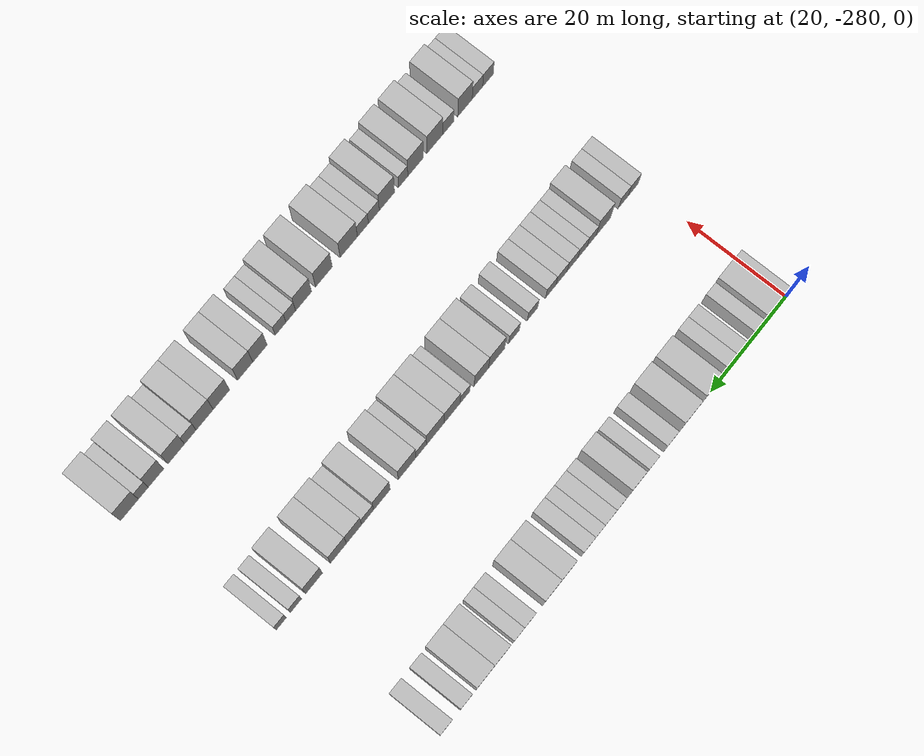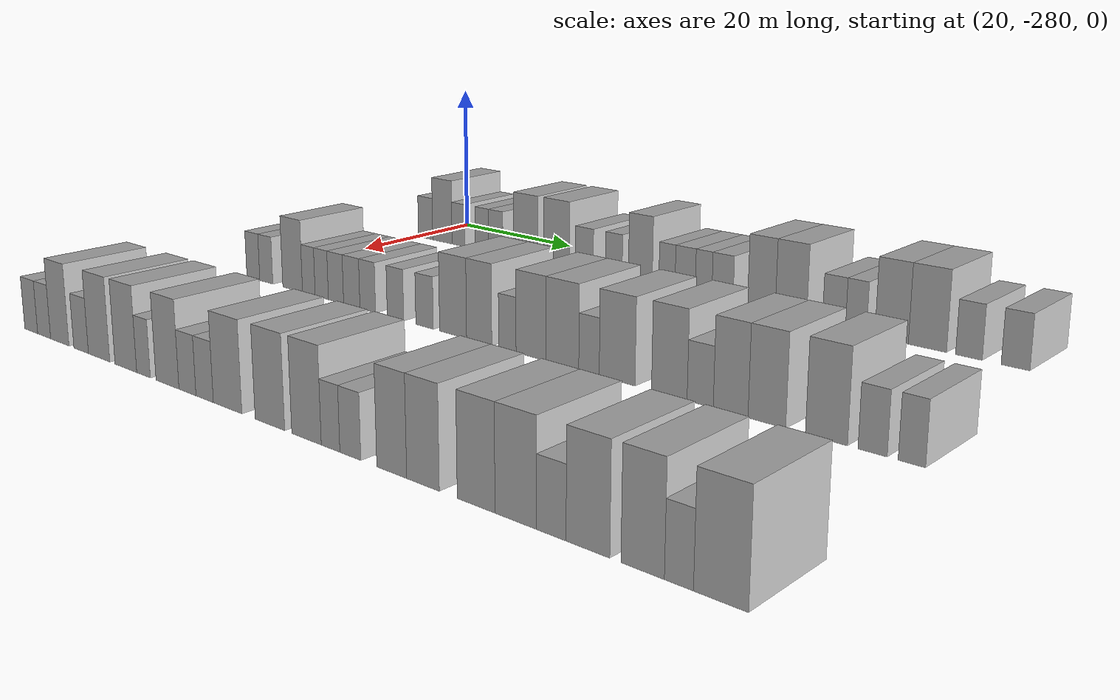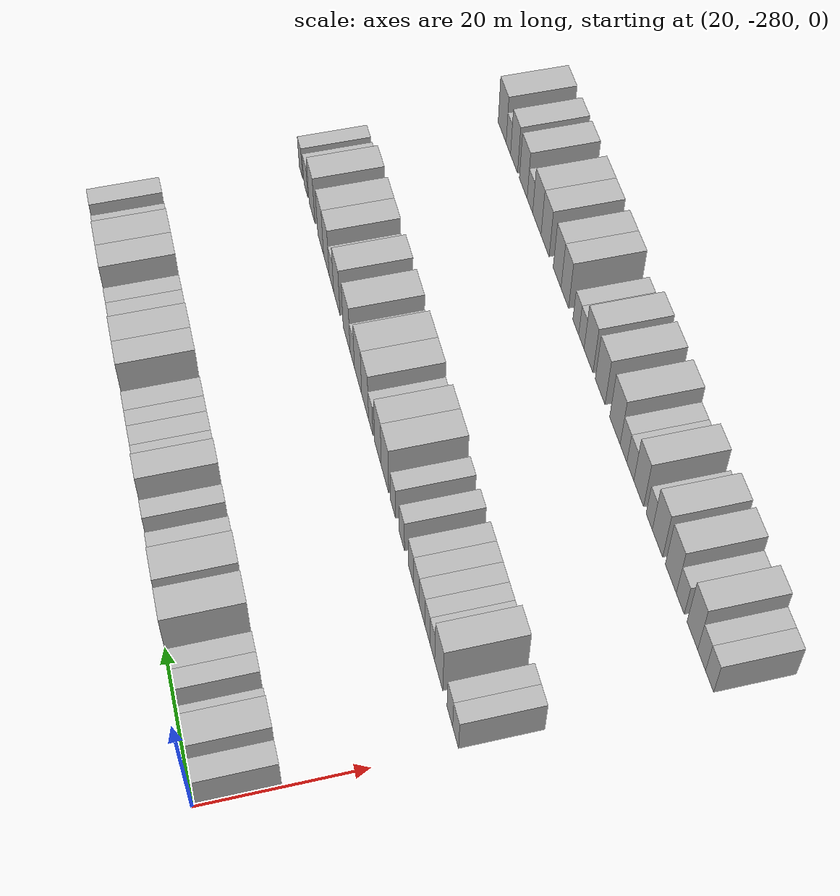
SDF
<sdf version="1.6">
 <world name="default">
  <model name="building_1">
   <static>1</static>
   <pose>25.0000 -278.5396 0 0.000000 0.000000 0.000000</pose>
   <link name="link">
    <pose>0 0 3.00 0 0 0</pose>
    <collision name="collision"><geometry><box><size>10.0000 2.9208 6.0000</size></box></geometry></collision>
    <visual name="visual">
     <cast_shadows>0</cast_shadows>
     <geometry><box><size>10.0000 2.9208 6.0000</size></box></geometry>
     <material>
      <script>
       <uri>model://HANNAS_wall/materials/scripts</uri>
       <uri>model://HANNAS_wall/materials/textures</uri>
       <name>vrc/HANNAS_wall</name>
      </script>
     </material>
    </visual>
   </link>
  </model>
  <model name="building_2">
   <static>1</static>
   <pose>25.0000 -275.1381 0 0.000000 0.000000 0.000000</pose>
   <link name="link">
    <pose>0 0 4.50 0 0 0</pose>
    <collision name="collision"><geometry><box><size>10.0000 3.8823 9.0000</size></box></geometry></collision>
    <visual name="visual">
     <cast_shadows>0</cast_shadows>
     <geometry><box><size>10.0000 3.8823 9.0000</size></box></geometry>
     <material>
      <script>
       <uri>model://HANNAS_wall/materials/scripts</uri>
       <uri>model://HANNAS_wall/materials/textures</uri>
       <name>vrc/HANNAS_wall</name>
      </script>
     </material>
    </visual>
   </link>
  </model>
  <model name="building_3">
   <static>1</static>
   <pose>25.0000 -271.9334 0 0.000000 0.000000 0.000000</pose>
   <link name="link">
    <pose>0 0 3.00 0 0 0</pose>
    <collision name="collision"><geometry><box><size>10.0000 2.5270 6.0000</size></box></geometry></collision>
    <visual name="visual">
     <cast_shadows>0</cast_shadows>
     <geometry><box><size>10.0000 2.5270 6.0000</size></box></geometry>
     <material>
      <script>
       <uri>model://HANNAS_wall/materials/scripts</uri>
       <uri>model://HANNAS_wall/materials/textures</uri>
       <name>vrc/HANNAS_wall</name>
      </script>
     </material>
    </visual>
   </link>
  </model>
  <model name="building_4">
   <static>1</static>
   <pose>25.0000 -267.3783 0 0.000000 0.000000 0.000000</pose>
   <link name="link">
    <pose>0 0 3.00 0 0 0</pose>
    <collision name="collision"><geometry><box><size>10.0000 2.5832 6.0000</size></box></geometry></collision>
    <visual name="visual">
     <cast_shadows>0</cast_shadows>
     <geometry><box><size>10.0000 2.5832 6.0000</size></box></geometry>
     <material>
      <script>
       <uri>model://HANNAS_wall/materials/scripts</uri>
       <uri>model://HANNAS_wall/materials/textures</uri>
       <name>vrc/HANNAS_wall</name>
      </script>
     </material>
    </visual>
   </link>
  </model>
  <model name="building_5">
   <static>1</static>
   <pose>25.0000 -264.7632 0 0.000000 0.000000 0.000000</pose>
   <link name="link">
    <pose>0 0 3.00 0 0 0</pose>
    <collision name="collision"><geometry><box><size>10.0000 2.6470 6.0000</size></box></geometry></collision>
    <visual name="visual">
     <cast_shadows>0</cast_shadows>
     <geometry><box><size>10.0000 2.6470 6.0000</size></box></geometry>
     <material>
      <script>
       <uri>model://HANNAS_wall/materials/scripts</uri>
       <uri>model://HANNAS_wall/materials/textures</uri>
       <name>vrc/HANNAS_wall</name>
      </script>
     </material>
    </visual>
   </link>
  </model>
  <model name="building_6">
   <static>1</static>
   <pose>25.0000 -259.2759 0 0.000000 0.000000 0.000000</pose>
   <link name="link">
    <pose>0 0 4.50 0 0 0</pose>
    <collision name="collision"><geometry><box><size>10.0000 4.3277 9.0000</size></box></geometry></collision>
    <visual name="visual">
     <cast_shadows>0</cast_shadows>
     <geometry><box><size>10.0000 4.3277 9.0000</size></box></geometry>
     <material>
      <script>
       <uri>model://HANNAS_wall/materials/scripts</uri>
       <uri>model://HANNAS_wall/materials/textures</uri>
       <name>vrc/HANNAS_wall</name>
      </script>
     </material>
    </visual>
   </link>
  </model>
  <model name="building_7">
   <static>1</static>
   <pose>25.0000 -253.8736 0 0.000000 0.000000 0.000000</pose>
   <link name="link">
    <pose>0 0 4.50 0 0 0</pose>
    <collision name="collision"><geometry><box><size>10.0000 4.4769 9.0000</size></box></geometry></collision>
    <visual name="visual">
     <cast_shadows>0</cast_shadows>
     <geometry><box><size>10.0000 4.4769 9.0000</size></box></geometry>
     <material>
      <script>
       <uri>model://HANNAS_wall/materials/scripts</uri>
       <uri>model://HANNAS_wall/materials/textures</uri>
       <name>vrc/HANNAS_wall</name>
      </script>
     </material>
    </visual>
   </link>
  </model>
  <model name="building_8">
   <static>1</static>
   <pose>25.0000 -249.1465 0 0.000000 0.000000 0.000000</pose>
   <link name="link">
    <pose>0 0 3.00 0 0 0</pose>
    <collision name="collision"><geometry><box><size>10.0000 2.9773 6.0000</size></box></geometry></collision>
    <visual name="visual">
     <cast_shadows>0</cast_shadows>
     <geometry><box><size>10.0000 2.9773 6.0000</size></box></geometry>
     <material>
      <script>
       <uri>model://HANNAS_wall/materials/scripts</uri>
       <uri>model://HANNAS_wall/materials/textures</uri>
       <name>vrc/HANNAS_wall</name>
      </script>
     </material>
    </visual>
   </link>
  </model>
  <model name="building_9">
   <static>1</static>
   <pose>25.0000 -244.3218 0 0.000000 0.000000 0.000000</pose>
   <link name="link">
    <pose>0 0 3.00 0 0 0</pose>
    <collision name="collision"><geometry><box><size>10.0000 2.6721 6.0000</size></box></geometry></collision>
    <visual name="visual">
     <cast_shadows>0</cast_shadows>
     <geometry><box><size>10.0000 2.6721 6.0000</size></box></geometry>
     <material>
      <script>
       <uri>model://HANNAS_wall/materials/scripts</uri>
       <uri>model://HANNAS_wall/materials/textures</uri>
       <name>vrc/HANNAS_wall</name>
      </script>
     </material>
    </visual>
   </link>
  </model>
  <model name="building_10">
   <static>1</static>
   <pose>25.0000 -240.1321 0 0.000000 0.000000 0.000000</pose>
   <link name="link">
    <pose>0 0 4.50 0 0 0</pose>
    <collision name="collision"><geometry><box><size>10.0000 3.7073 9.0000</size></box></geometry></collision>
    <visual name="visual">
     <cast_shadows>0</cast_shadows>
     <geometry><box><size>10.0000 3.7073 9.0000</size></box></geometry>
     <material>
      <script>
       <uri>model://HANNAS_wall/materials/scripts</uri>
       <uri>model://HANNAS_wall/materials/textures</uri>
       <name>vrc/HANNAS_wall</name>
      </script>
     </material>
    </visual>
   </link>
  </model>
  <model name="building_11">
   <static>1</static>
   <pose>25.0000 -236.0598 0 0.000000 0.000000 0.000000</pose>
   <link name="link">
    <pose>0 0 3.00 0 0 0</pose>
    <collision name="collision"><geometry><box><size>10.0000 2.4374 6.0000</size></box></geometry></collision>
    <visual name="visual">
     <cast_shadows>0</cast_shadows>
     <geometry><box><size>10.0000 2.4374 6.0000</size></box></geometry>
     <material>
      <script>
       <uri>model://HANNAS_wall/materials/scripts</uri>
       <uri>model://HANNAS_wall/materials/textures</uri>
       <name>vrc/HANNAS_wall</name>
      </script>
     </material>
    </visual>
   </link>
  </model>
  <model name="building_12">
   <static>1</static>
   <pose>25.0000 -233.3517 0 0.000000 0.000000 0.000000</pose>
   <link name="link">
    <pose>0 0 3.00 0 0 0</pose>
    <collision name="collision"><geometry><box><size>10.0000 2.9788 6.0000</size></box></geometry></collision>
    <visual name="visual">
     <cast_shadows>0</cast_shadows>
     <geometry><box><size>10.0000 2.9788 6.0000</size></box></geometry>
     <material>
      <script>
       <uri>model://HANNAS_wall/materials/scripts</uri>
       <uri>model://HANNAS_wall/materials/textures</uri>
       <name>vrc/HANNAS_wall</name>
      </script>
     </material>
    </visual>
   </link>
  </model>
  <model name="building_13">
   <static>1</static>
   <pose>25.0000 -230.6579 0 0.000000 0.000000 0.000000</pose>
   <link name="link">
    <pose>0 0 3.00 0 0 0</pose>
    <collision name="collision"><geometry><box><size>10.0000 2.4088 6.0000</size></box></geometry></collision>
    <visual name="visual">
     <cast_shadows>0</cast_shadows>
     <geometry><box><size>10.0000 2.4088 6.0000</size></box></geometry>
     <material>
      <script>
       <uri>model://HANNAS_wall/materials/scripts</uri>
       <uri>model://HANNAS_wall/materials/textures</uri>
       <name>vrc/HANNAS_wall</name>
      </script>
     </material>
    </visual>
   </link>
  </model>
  <model name="building_14">
   <static>1</static>
   <pose>25.0000 -227.9544 0 0.000000 0.000000 0.000000</pose>
   <link name="link">
    <pose>0 0 3.00 0 0 0</pose>
    <collision name="collision"><geometry><box><size>10.0000 2.9981 6.0000</size></box></geometry></collision>
    <visual name="visual">
     <cast_shadows>0</cast_shadows>
     <geometry><box><size>10.0000 2.9981 6.0000</size></box></geometry>
     <material>
      <script>
       <uri>model://HANNAS_wall/materials/scripts</uri>
       <uri>model://HANNAS_wall/materials/textures</uri>
       <name>vrc/HANNAS_wall</name>
      </script>
     </material>
    </visual>
   </link>
  </model>
  <model name="building_15">
   <static>1</static>
   <pose>25.0000 -222.5823 0 0.000000 0.000000 0.000000</pose>
   <link name="link">
    <pose>0 0 4.50 0 0 0</pose>
    <collision name="collision"><geometry><box><size>10.0000 3.7462 9.0000</size></box></geometry></collision>
    <visual name="visual">
     <cast_shadows>0</cast_shadows>
     <geometry><box><size>10.0000 3.7462 9.0000</size></box></geometry>
     <material>
      <script>
       <uri>model://HANNAS_wall/materials/scripts</uri>
       <uri>model://HANNAS_wall/materials/textures</uri>
       <name>vrc/HANNAS_wall</name>
      </script>
     </material>
    </visual>
   </link>
  </model>
  <model name="building_16">
   <static>1</static>
   <pose>25.0000 -218.6534 0 0.000000 0.000000 0.000000</pose>
   <link name="link">
    <pose>0 0 4.50 0 0 0</pose>
    <collision name="collision"><geometry><box><size>10.0000 4.1116 9.0000</size></box></geometry></collision>
    <visual name="visual">
     <cast_shadows>0</cast_shadows>
     <geometry><box><size>10.0000 4.1116 9.0000</size></box></geometry>
     <material>
      <script>
       <uri>model://HANNAS_wall/materials/scripts</uri>
       <uri>model://HANNAS_wall/materials/textures</uri>
       <name>vrc/HANNAS_wall</name>
      </script>
     </material>
    </visual>
   </link>
  </model>
  <model name="building_17">
   <static>1</static>
   <pose>25.0000 -213.1574 0 0.000000 0.000000 0.000000</pose>
   <link name="link">
    <pose>0 0 3.00 0 0 0</pose>
    <collision name="collision"><geometry><box><size>10.0000 2.8804 6.0000</size></box></geometry></collision>
    <visual name="visual">
     <cast_shadows>0</cast_shadows>
     <geometry><box><size>10.0000 2.8804 6.0000</size></box></geometry>
     <material>
      <script>
       <uri>model://HANNAS_wall/materials/scripts</uri>
       <uri>model://HANNAS_wall/materials/textures</uri>
       <name>vrc/HANNAS_wall</name>
      </script>
     </material>
    </visual>
   </link>
  </model>
  <model name="building_18">
   <static>1</static>
   <pose>25.0000 -210.4344 0 0.000000 0.000000 0.000000</pose>
   <link name="link">
    <pose>0 0 3.00 0 0 0</pose>
    <collision name="collision"><geometry><box><size>10.0000 2.5655 6.0000</size></box></geometry></collision>
    <visual name="visual">
     <cast_shadows>0</cast_shadows>
     <geometry><box><size>10.0000 2.5655 6.0000</size></box></geometry>
     <material>
      <script>
       <uri>model://HANNAS_wall/materials/scripts</uri>
       <uri>model://HANNAS_wall/materials/textures</uri>
       <name>vrc/HANNAS_wall</name>
      </script>
     </material>
    </visual>
   </link>
  </model>
  <model name="building_19">
   <static>1</static>
   <pose>25.0000 -206.1890 0 0.000000 0.000000 0.000000</pose>
   <link name="link">
    <pose>0 0 4.50 0 0 0</pose>
    <collision name="collision"><geometry><box><size>10.0000 3.9254 9.0000</size></box></geometry></collision>
    <visual name="visual">
     <cast_shadows>0</cast_shadows>
     <geometry><box><size>10.0000 3.9254 9.0000</size></box></geometry>
     <material>
      <script>
       <uri>model://HANNAS_wall/materials/scripts</uri>
       <uri>model://HANNAS_wall/materials/textures</uri>
       <name>vrc/HANNAS_wall</name>
      </script>
     </material>
    </visual>
   </link>
  </model>
  <model name="building_20">
   <static>1</static>
   <pose>25.0000 -202.0667 0 0.000000 0.000000 0.000000</pose>
   <link name="link">
    <pose>0 0 4.50 0 0 0</pose>
    <collision name="collision"><geometry><box><size>10.0000 4.3190 9.0000</size></box></geometry></collision>
    <visual name="visual">
     <cast_shadows>0</cast_shadows>
     <geometry><box><size>10.0000 4.3190 9.0000</size></box></geometry>
     <material>
      <script>
       <uri>model://HANNAS_wall/materials/scripts</uri>
       <uri>model://HANNAS_wall/materials/textures</uri>
       <name>vrc/HANNAS_wall</name>
      </script>
     </material>
    </visual>
   </link>
  </model>
  <model name="building_21">
   <static>1</static>
   <pose>25.0000 -197.4640 0 0.000000 0.000000 0.000000</pose>
   <link name="link">
    <pose>0 0 3.00 0 0 0</pose>
    <collision name="collision"><geometry><box><size>10.0000 2.8864 6.0000</size></box></geometry></collision>
    <visual name="visual">
     <cast_shadows>0</cast_shadows>
     <geometry><box><size>10.0000 2.8864 6.0000</size></box></geometry>
     <material>
      <script>
       <uri>model://HANNAS_wall/materials/scripts</uri>
       <uri>model://HANNAS_wall/materials/textures</uri>
       <name>vrc/HANNAS_wall</name>
      </script>
     </material>
    </visual>
   </link>
  </model>
  <model name="building_22">
   <static>1</static>
   <pose>25.0000 -192.5317 0 0.000000 0.000000 0.000000</pose>
   <link name="link">
    <pose>0 0 3.00 0 0 0</pose>
    <collision name="collision"><geometry><box><size>10.0000 2.9783 6.0000</size></box></geometry></collision>
    <visual name="visual">
     <cast_shadows>0</cast_shadows>
     <geometry><box><size>10.0000 2.9783 6.0000</size></box></geometry>
     <material>
      <script>
       <uri>model://HANNAS_wall/materials/scripts</uri>
       <uri>model://HANNAS_wall/materials/textures</uri>
       <name>vrc/HANNAS_wall</name>
      </script>
     </material>
    </visual>
   </link>
  </model>
  <model name="building_144">
   <static>1</static>
   <pose>55.0000 -278.6640 0 0.000000 0.000000 0.000000</pose>
   <link name="link">
    <pose>0 0 3.00 0 0 0</pose>
    <collision name="collision"><geometry><box><size>10.0000 2.6720 6.0000</size></box></geometry></collision>
    <visual name="visual">
     <cast_shadows>0</cast_shadows>
     <geometry><box><size>10.0000 2.6720 6.0000</size></box></geometry>
     <material>
      <script>
       <uri>model://HANNAS_wall/materials/scripts</uri>
       <uri>model://HANNAS_wall/materials/textures</uri>
       <name>vrc/HANNAS_wall</name>
      </script>
     </material>
    </visual>
   </link>
  </model>
  <model name="building_145">
   <static>1</static>
   <pose>55.0000 -276.0088 0 0.000000 0.000000 0.000000</pose>
   <link name="link">
    <pose>0 0 3.00 0 0 0</pose>
    <collision name="collision"><geometry><box><size>10.0000 2.6384 6.0000</size></box></geometry></collision>
    <visual name="visual">
     <cast_shadows>0</cast_shadows>
     <geometry><box><size>10.0000 2.6384 6.0000</size></box></geometry>
     <material>
      <script>
       <uri>model://HANNAS_wall/materials/scripts</uri>
       <uri>model://HANNAS_wall/materials/textures</uri>
       <name>vrc/HANNAS_wall</name>
      </script>
     </material>
    </visual>
   </link>
  </model>
  <model name="building_146">
   <static>1</static>
   <pose>55.0000 -270.7719 0 0.000000 0.000000 0.000000</pose>
   <link name="link">
    <pose>0 0 4.50 0 0 0</pose>
    <collision name="collision"><geometry><box><size>10.0000 3.8356 9.0000</size></box></geometry></collision>
    <visual name="visual">
     <cast_shadows>0</cast_shadows>
     <geometry><box><size>10.0000 3.8356 9.0000</size></box></geometry>
     <material>
      <script>
       <uri>model://HANNAS_wall/materials/scripts</uri>
       <uri>model://HANNAS_wall/materials/textures</uri>
       <name>vrc/HANNAS_wall</name>
      </script>
     </material>
    </visual>
   </link>
  </model>
  <model name="building_147">
   <static>1</static>
   <pose>55.0000 -267.6472 0 0.000000 0.000000 0.000000</pose>
   <link name="link">
    <pose>0 0 3.00 0 0 0</pose>
    <collision name="collision"><geometry><box><size>10.0000 2.4137 6.0000</size></box></geometry></collision>
    <visual name="visual">
     <cast_shadows>0</cast_shadows>
     <geometry><box><size>10.0000 2.4137 6.0000</size></box></geometry>
     <material>
      <script>
       <uri>model://HANNAS_wall/materials/scripts</uri>
       <uri>model://HANNAS_wall/materials/textures</uri>
       <name>vrc/HANNAS_wall</name>
      </script>
     </material>
    </visual>
   </link>
  </model>
  <model name="building_148">
   <static>1</static>
   <pose>55.0000 -265.2075 0 0.000000 0.000000 0.000000</pose>
   <link name="link">
    <pose>0 0 3.00 0 0 0</pose>
    <collision name="collision"><geometry><box><size>10.0000 2.4659 6.0000</size></box></geometry></collision>
    <visual name="visual">
     <cast_shadows>0</cast_shadows>
     <geometry><box><size>10.0000 2.4659 6.0000</size></box></geometry>
     <material>
      <script>
       <uri>model://HANNAS_wall/materials/scripts</uri>
       <uri>model://HANNAS_wall/materials/textures</uri>
       <name>vrc/HANNAS_wall</name>
      </script>
     </material>
    </visual>
   </link>
  </model>
  <model name="building_149">
   <static>1</static>
   <pose>55.0000 -262.5888 0 0.000000 0.000000 0.000000</pose>
   <link name="link">
    <pose>0 0 3.00 0 0 0</pose>
    <collision name="collision"><geometry><box><size>10.0000 2.7714 6.0000</size></box></geometry></collision>
    <visual name="visual">
     <cast_shadows>0</cast_shadows>
     <geometry><box><size>10.0000 2.7714 6.0000</size></box></geometry>
     <material>
      <script>
       <uri>model://HANNAS_wall/materials/scripts</uri>
       <uri>model://HANNAS_wall/materials/textures</uri>
       <name>vrc/HANNAS_wall</name>
      </script>
     </material>
    </visual>
   </link>
  </model>
  <model name="building_150">
   <static>1</static>
   <pose>55.0000 -259.7453 0 0.000000 0.000000 0.000000</pose>
   <link name="link">
    <pose>0 0 3.00 0 0 0</pose>
    <collision name="collision"><geometry><box><size>10.0000 2.9156 6.0000</size></box></geometry></collision>
    <visual name="visual">
     <cast_shadows>0</cast_shadows>
     <geometry><box><size>10.0000 2.9156 6.0000</size></box></geometry>
     <material>
      <script>
       <uri>model://HANNAS_wall/materials/scripts</uri>
       <uri>model://HANNAS_wall/materials/textures</uri>
       <name>vrc/HANNAS_wall</name>
      </script>
     </material>
    </visual>
   </link>
  </model>
  <model name="building_151">
   <static>1</static>
   <pose>55.0000 -256.9271 0 0.000000 0.000000 0.000000</pose>
   <link name="link">
    <pose>0 0 3.00 0 0 0</pose>
    <collision name="collision"><geometry><box><size>10.0000 2.7208 6.0000</size></box></geometry></collision>
    <visual name="visual">
     <cast_shadows>0</cast_shadows>
     <geometry><box><size>10.0000 2.7208 6.0000</size></box></geometry>
     <material>
      <script>
       <uri>model://HANNAS_wall/materials/scripts</uri>
       <uri>model://HANNAS_wall/materials/textures</uri>
       <name>vrc/HANNAS_wall</name>
      </script>
     </material>
    </visual>
   </link>
  </model>
  <model name="building_152">
   <static>1</static>
   <pose>55.0000 -252.1906 0 0.000000 0.000000 0.000000</pose>
   <link name="link">
    <pose>0 0 3.00 0 0 0</pose>
    <collision name="collision"><geometry><box><size>10.0000 2.7523 6.0000</size></box></geometry></collision>
    <visual name="visual">
     <cast_shadows>0</cast_shadows>
     <geometry><box><size>10.0000 2.7523 6.0000</size></box></geometry>
     <material>
      <script>
       <uri>model://HANNAS_wall/materials/scripts</uri>
       <uri>model://HANNAS_wall/materials/textures</uri>
       <name>vrc/HANNAS_wall</name>
      </script>
     </material>
    </visual>
   </link>
  </model>
  <model name="building_153">
   <static>1</static>
   <pose>55.0000 -247.4124 0 0.000000 0.000000 0.000000</pose>
   <link name="link">
    <pose>0 0 3.00 0 0 0</pose>
    <collision name="collision"><geometry><box><size>10.0000 2.8041 6.0000</size></box></geometry></collision>
    <visual name="visual">
     <cast_shadows>0</cast_shadows>
     <geometry><box><size>10.0000 2.8041 6.0000</size></box></geometry>
     <material>
      <script>
       <uri>model://HANNAS_wall/materials/scripts</uri>
       <uri>model://HANNAS_wall/materials/textures</uri>
       <name>vrc/HANNAS_wall</name>
      </script>
     </material>
    </visual>
   </link>
  </model>
  <model name="building_154">
   <static>1</static>
   <pose>55.0000 -242.9289 0 0.000000 0.000000 0.000000</pose>
   <link name="link">
    <pose>0 0 4.50 0 0 0</pose>
    <collision name="collision"><geometry><box><size>10.0000 4.1631 9.0000</size></box></geometry></collision>
    <visual name="visual">
     <cast_shadows>0</cast_shadows>
     <geometry><box><size>10.0000 4.1631 9.0000</size></box></geometry>
     <material>
      <script>
       <uri>model://HANNAS_wall/materials/scripts</uri>
       <uri>model://HANNAS_wall/materials/textures</uri>
       <name>vrc/HANNAS_wall</name>
      </script>
     </material>
    </visual>
   </link>
  </model>
  <model name="building_155">
   <static>1</static>
   <pose>55.0000 -238.9700 0 0.000000 0.000000 0.000000</pose>
   <link name="link">
    <pose>0 0 4.50 0 0 0</pose>
    <collision name="collision"><geometry><box><size>10.0000 3.7547 9.0000</size></box></geometry></collision>
    <visual name="visual">
     <cast_shadows>0</cast_shadows>
     <geometry><box><size>10.0000 3.7547 9.0000</size></box></geometry>
     <material>
      <script>
       <uri>model://HANNAS_wall/materials/scripts</uri>
       <uri>model://HANNAS_wall/materials/textures</uri>
       <name>vrc/HANNAS_wall</name>
      </script>
     </material>
    </visual>
   </link>
  </model>
  <model name="building_156">
   <static>1</static>
   <pose>55.0000 -234.8412 0 0.000000 0.000000 0.000000</pose>
   <link name="link">
    <pose>0 0 3.00 0 0 0</pose>
    <collision name="collision"><geometry><box><size>10.0000 2.5029 6.0000</size></box></geometry></collision>
    <visual name="visual">
     <cast_shadows>0</cast_shadows>
     <geometry><box><size>10.0000 2.5029 6.0000</size></box></geometry>
     <material>
      <script>
       <uri>model://HANNAS_wall/materials/scripts</uri>
       <uri>model://HANNAS_wall/materials/textures</uri>
       <name>vrc/HANNAS_wall</name>
      </script>
     </material>
    </visual>
   </link>
  </model>
  <model name="building_157">
   <static>1</static>
   <pose>55.0000 -231.5283 0 0.000000 0.000000 0.000000</pose>
   <link name="link">
    <pose>0 0 4.50 0 0 0</pose>
    <collision name="collision"><geometry><box><size>10.0000 4.1229 9.0000</size></box></geometry></collision>
    <visual name="visual">
     <cast_shadows>0</cast_shadows>
     <geometry><box><size>10.0000 4.1229 9.0000</size></box></geometry>
     <material>
      <script>
       <uri>model://HANNAS_wall/materials/scripts</uri>
       <uri>model://HANNAS_wall/materials/textures</uri>
       <name>vrc/HANNAS_wall</name>
      </script>
     </material>
    </visual>
   </link>
  </model>
  <model name="building_158">
   <static>1</static>
   <pose>55.0000 -227.2563 0 0.000000 0.000000 0.000000</pose>
   <link name="link">
    <pose>0 0 4.50 0 0 0</pose>
    <collision name="collision"><geometry><box><size>10.0000 4.4212 9.0000</size></box></geometry></collision>
    <visual name="visual">
     <cast_shadows>0</cast_shadows>
     <geometry><box><size>10.0000 4.4212 9.0000</size></box></geometry>
     <material>
      <script>
       <uri>model://HANNAS_wall/materials/scripts</uri>
       <uri>model://HANNAS_wall/materials/textures</uri>
       <name>vrc/HANNAS_wall</name>
      </script>
     </material>
    </visual>
   </link>
  </model>
  <model name="building_159">
   <static>1</static>
   <pose>55.0000 -223.7208 0 0.000000 0.000000 0.000000</pose>
   <link name="link">
    <pose>0 0 3.00 0 0 0</pose>
    <collision name="collision"><geometry><box><size>10.0000 2.6498 6.0000</size></box></geometry></collision>
    <visual name="visual">
     <cast_shadows>0</cast_shadows>
     <geometry><box><size>10.0000 2.6498 6.0000</size></box></geometry>
     <material>
      <script>
       <uri>model://HANNAS_wall/materials/scripts</uri>
       <uri>model://HANNAS_wall/materials/textures</uri>
       <name>vrc/HANNAS_wall</name>
      </script>
     </material>
    </visual>
   </link>
  </model>
  <model name="building_160">
   <static>1</static>
   <pose>55.0000 -220.1639 0 0.000000 0.000000 0.000000</pose>
   <link name="link">
    <pose>0 0 4.50 0 0 0</pose>
    <collision name="collision"><geometry><box><size>10.0000 4.4640 9.0000</size></box></geometry></collision>
    <visual name="visual">
     <cast_shadows>0</cast_shadows>
     <geometry><box><size>10.0000 4.4640 9.0000</size></box></geometry>
     <material>
      <script>
       <uri>model://HANNAS_wall/materials/scripts</uri>
       <uri>model://HANNAS_wall/materials/textures</uri>
       <name>vrc/HANNAS_wall</name>
      </script>
     </material>
    </visual>
   </link>
  </model>
  <model name="building_161">
   <static>1</static>
   <pose>55.0000 -213.8485 0 0.000000 0.000000 0.000000</pose>
   <link name="link">
    <pose>0 0 4.50 0 0 0</pose>
    <collision name="collision"><geometry><box><size>10.0000 4.1669 9.0000</size></box></geometry></collision>
    <visual name="visual">
     <cast_shadows>0</cast_shadows>
     <geometry><box><size>10.0000 4.1669 9.0000</size></box></geometry>
     <material>
      <script>
       <uri>model://HANNAS_wall/materials/scripts</uri>
       <uri>model://HANNAS_wall/materials/textures</uri>
       <name>vrc/HANNAS_wall</name>
      </script>
     </material>
    </visual>
   </link>
  </model>
  <model name="building_162">
   <static>1</static>
   <pose>55.0000 -210.2863 0 0.000000 0.000000 0.000000</pose>
   <link name="link">
    <pose>0 0 3.00 0 0 0</pose>
    <collision name="collision"><geometry><box><size>10.0000 2.9574 6.0000</size></box></geometry></collision>
    <visual name="visual">
     <cast_shadows>0</cast_shadows>
     <geometry><box><size>10.0000 2.9574 6.0000</size></box></geometry>
     <material>
      <script>
       <uri>model://HANNAS_wall/materials/scripts</uri>
       <uri>model://HANNAS_wall/materials/textures</uri>
       <name>vrc/HANNAS_wall</name>
      </script>
     </material>
    </visual>
   </link>
  </model>
  <model name="building_163">
   <static>1</static>
   <pose>55.0000 -206.9106 0 0.000000 0.000000 0.000000</pose>
   <link name="link">
    <pose>0 0 4.50 0 0 0</pose>
    <collision name="collision"><geometry><box><size>10.0000 3.7941 9.0000</size></box></geometry></collision>
    <visual name="visual">
     <cast_shadows>0</cast_shadows>
     <geometry><box><size>10.0000 3.7941 9.0000</size></box></geometry>
     <material>
      <script>
       <uri>model://HANNAS_wall/materials/scripts</uri>
       <uri>model://HANNAS_wall/materials/textures</uri>
       <name>vrc/HANNAS_wall</name>
      </script>
     </material>
    </visual>
   </link>
  </model>
  <model name="building_164">
   <static>1</static>
   <pose>55.0000 -203.0401 0 0.000000 0.000000 0.000000</pose>
   <link name="link">
    <pose>0 0 4.50 0 0 0</pose>
    <collision name="collision"><geometry><box><size>10.0000 3.9468 9.0000</size></box></geometry></collision>
    <visual name="visual">
     <cast_shadows>0</cast_shadows>
     <geometry><box><size>10.0000 3.9468 9.0000</size></box></geometry>
     <material>
      <script>
       <uri>model://HANNAS_wall/materials/scripts</uri>
       <uri>model://HANNAS_wall/materials/textures</uri>
       <name>vrc/HANNAS_wall</name>
      </script>
     </material>
    </visual>
   </link>
  </model>
  <model name="building_165">
   <static>1</static>
   <pose>55.0000 -197.0038 0 0.000000 0.000000 0.000000</pose>
   <link name="link">
    <pose>0 0 4.50 0 0 0</pose>
    <collision name="collision"><geometry><box><size>10.0000 4.1259 9.0000</size></box></geometry></collision>
    <visual name="visual">
     <cast_shadows>0</cast_shadows>
     <geometry><box><size>10.0000 4.1259 9.0000</size></box></geometry>
     <material>
      <script>
       <uri>model://HANNAS_wall/materials/scripts</uri>
       <uri>model://HANNAS_wall/materials/textures</uri>
       <name>vrc/HANNAS_wall</name>
      </script>
     </material>
    </visual>
   </link>
  </model>
  <model name="building_166">
   <static>1</static>
   <pose>55.0000 -192.5790 0 0.000000 0.000000 0.000000</pose>
   <link name="link">
    <pose>0 0 3.00 0 0 0</pose>
    <collision name="collision"><geometry><box><size>10.0000 2.7236 6.0000</size></box></geometry></collision>
    <visual name="visual">
     <cast_shadows>0</cast_shadows>
     <geometry><box><size>10.0000 2.7236 6.0000</size></box></geometry>
     <material>
      <script>
       <uri>model://HANNAS_wall/materials/scripts</uri>
       <uri>model://HANNAS_wall/materials/textures</uri>
       <name>vrc/HANNAS_wall</name>
      </script>
     </material>
    </visual>
   </link>
  </model>
  <model name="building_167">
   <static>1</static>
   <pose>55.0000 -188.9886 0 0.000000 0.000000 0.000000</pose>
   <link name="link">
    <pose>0 0 3.00 0 0 0</pose>
    <collision name="collision"><geometry><box><size>10.0000 2.4573 6.0000</size></box></geometry></collision>
    <visual name="visual">
     <cast_shadows>0</cast_shadows>
     <geometry><box><size>10.0000 2.4573 6.0000</size></box></geometry>
     <material>
      <script>
       <uri>model://HANNAS_wall/materials/scripts</uri>
       <uri>model://HANNAS_wall/materials/textures</uri>
       <name>vrc/HANNAS_wall</name>
      </script>
     </material>
    </visual>
   </link>
  </model>
  <model name="building_280">
   <static>1</static>
   <pose>85.0000 -278.5950 0 0.000000 0.000000 0.000000</pose>
   <link name="link">
    <pose>0 0 3.00 0 0 0</pose>
    <collision name="collision"><geometry><box><size>10.0000 2.8100 6.0000</size></box></geometry></collision>
    <visual name="visual">
     <cast_shadows>0</cast_shadows>
     <geometry><box><size>10.0000 2.8100 6.0000</size></box></geometry>
     <material>
      <script>
       <uri>model://HANNAS_wall/materials/scripts</uri>
       <uri>model://HANNAS_wall/materials/textures</uri>
       <name>vrc/HANNAS_wall</name>
      </script>
     </material>
    </visual>
   </link>
  </model>
  <model name="building_281">
   <static>1</static>
   <pose>85.0000 -275.8076 0 0.000000 0.000000 0.000000</pose>
   <link name="link">
    <pose>0 0 3.00 0 0 0</pose>
    <collision name="collision"><geometry><box><size>10.0000 2.7648 6.0000</size></box></geometry></collision>
    <visual name="visual">
     <cast_shadows>0</cast_shadows>
     <geometry><box><size>10.0000 2.7648 6.0000</size></box></geometry>
     <material>
      <script>
       <uri>model://HANNAS_wall/materials/scripts</uri>
       <uri>model://HANNAS_wall/materials/textures</uri>
       <name>vrc/HANNAS_wall</name>
      </script>
     </material>
    </visual>
   </link>
  </model>
  <model name="building_282">
   <static>1</static>
   <pose>85.0000 -272.5247 0 0.000000 0.000000 0.000000</pose>
   <link name="link">
    <pose>0 0 4.50 0 0 0</pose>
    <collision name="collision"><geometry><box><size>10.0000 3.8011 9.0000</size></box></geometry></collision>
    <visual name="visual">
     <cast_shadows>0</cast_shadows>
     <geometry><box><size>10.0000 3.8011 9.0000</size></box></geometry>
     <material>
      <script>
       <uri>model://HANNAS_wall/materials/scripts</uri>
       <uri>model://HANNAS_wall/materials/textures</uri>
       <name>vrc/HANNAS_wall</name>
      </script>
     </material>
    </visual>
   </link>
  </model>
  <model name="building_283">
   <static>1</static>
   <pose>85.0000 -268.1702 0 0.000000 0.000000 0.000000</pose>
   <link name="link">
    <pose>0 0 3.00 0 0 0</pose>
    <collision name="collision"><geometry><box><size>10.0000 2.9080 6.0000</size></box></geometry></collision>
    <visual name="visual">
     <cast_shadows>0</cast_shadows>
     <geometry><box><size>10.0000 2.9080 6.0000</size></box></geometry>
     <material>
      <script>
       <uri>model://HANNAS_wall/materials/scripts</uri>
       <uri>model://HANNAS_wall/materials/textures</uri>
       <name>vrc/HANNAS_wall</name>
      </script>
     </material>
    </visual>
   </link>
  </model>
  <model name="building_284">
   <static>1</static>
   <pose>85.0000 -264.6574 0 0.000000 0.000000 0.000000</pose>
   <link name="link">
    <pose>0 0 4.50 0 0 0</pose>
    <collision name="collision"><geometry><box><size>10.0000 4.1176 9.0000</size></box></geometry></collision>
    <visual name="visual">
     <cast_shadows>0</cast_shadows>
     <geometry><box><size>10.0000 4.1176 9.0000</size></box></geometry>
     <material>
      <script>
       <uri>model://HANNAS_wall/materials/scripts</uri>
       <uri>model://HANNAS_wall/materials/textures</uri>
       <name>vrc/HANNAS_wall</name>
      </script>
     </material>
    </visual>
   </link>
  </model>
  <model name="building_285">
   <static>1</static>
   <pose>85.0000 -259.6058 0 0.000000 0.000000 0.000000</pose>
   <link name="link">
    <pose>0 0 4.50 0 0 0</pose>
    <collision name="collision"><geometry><box><size>10.0000 3.9856 9.0000</size></box></geometry></collision>
    <visual name="visual">
     <cast_shadows>0</cast_shadows>
     <geometry><box><size>10.0000 3.9856 9.0000</size></box></geometry>
     <material>
      <script>
       <uri>model://HANNAS_wall/materials/scripts</uri>
       <uri>model://HANNAS_wall/materials/textures</uri>
       <name>vrc/HANNAS_wall</name>
      </script>
     </material>
    </visual>
   </link>
  </model>
  <model name="building_286">
   <static>1</static>
   <pose>85.0000 -256.3982 0 0.000000 0.000000 0.000000</pose>
   <link name="link">
    <pose>0 0 3.00 0 0 0</pose>
    <collision name="collision"><geometry><box><size>10.0000 2.4296 6.0000</size></box></geometry></collision>
    <visual name="visual">
     <cast_shadows>0</cast_shadows>
     <geometry><box><size>10.0000 2.4296 6.0000</size></box></geometry>
     <material>
      <script>
       <uri>model://HANNAS_wall/materials/scripts</uri>
       <uri>model://HANNAS_wall/materials/textures</uri>
       <name>vrc/HANNAS_wall</name>
      </script>
     </material>
    </visual>
   </link>
  </model>
  <model name="building_287">
   <static>1</static>
   <pose>85.0000 -252.2195 0 0.000000 0.000000 0.000000</pose>
   <link name="link">
    <pose>0 0 4.50 0 0 0</pose>
    <collision name="collision"><geometry><box><size>10.0000 3.9277 9.0000</size></box></geometry></collision>
    <visual name="visual">
     <cast_shadows>0</cast_shadows>
     <geometry><box><size>10.0000 3.9277 9.0000</size></box></geometry>
     <material>
      <script>
       <uri>model://HANNAS_wall/materials/scripts</uri>
       <uri>model://HANNAS_wall/materials/textures</uri>
       <name>vrc/HANNAS_wall</name>
      </script>
     </material>
    </visual>
   </link>
  </model>
  <model name="building_288">
   <static>1</static>
   <pose>85.0000 -248.8473 0 0.000000 0.000000 0.000000</pose>
   <link name="link">
    <pose>0 0 3.00 0 0 0</pose>
    <collision name="collision"><geometry><box><size>10.0000 2.8167 6.0000</size></box></geometry></collision>
    <visual name="visual">
     <cast_shadows>0</cast_shadows>
     <geometry><box><size>10.0000 2.8167 6.0000</size></box></geometry>
     <material>
      <script>
       <uri>model://HANNAS_wall/materials/scripts</uri>
       <uri>model://HANNAS_wall/materials/textures</uri>
       <name>vrc/HANNAS_wall</name>
      </script>
     </material>
    </visual>
   </link>
  </model>
  <model name="building_289">
   <static>1</static>
   <pose>85.0000 -246.0406 0 0.000000 0.000000 0.000000</pose>
   <link name="link">
    <pose>0 0 3.00 0 0 0</pose>
    <collision name="collision"><geometry><box><size>10.0000 2.7967 6.0000</size></box></geometry></collision>
    <visual name="visual">
     <cast_shadows>0</cast_shadows>
     <geometry><box><size>10.0000 2.7967 6.0000</size></box></geometry>
     <material>
      <script>
       <uri>model://HANNAS_wall/materials/scripts</uri>
       <uri>model://HANNAS_wall/materials/textures</uri>
       <name>vrc/HANNAS_wall</name>
      </script>
     </material>
    </visual>
   </link>
  </model>
  <model name="building_290">
   <static>1</static>
   <pose>85.0000 -242.4320 0 0.000000 0.000000 0.000000</pose>
   <link name="link">
    <pose>0 0 4.50 0 0 0</pose>
    <collision name="collision"><geometry><box><size>10.0000 4.4204 9.0000</size></box></geometry></collision>
    <visual name="visual">
     <cast_shadows>0</cast_shadows>
     <geometry><box><size>10.0000 4.4204 9.0000</size></box></geometry>
     <material>
      <script>
       <uri>model://HANNAS_wall/materials/scripts</uri>
       <uri>model://HANNAS_wall/materials/textures</uri>
       <name>vrc/HANNAS_wall</name>
      </script>
     </material>
    </visual>
   </link>
  </model>
  <model name="building_291">
   <static>1</static>
   <pose>85.0000 -236.0854 0 0.000000 0.000000 0.000000</pose>
   <link name="link">
    <pose>0 0 4.50 0 0 0</pose>
    <collision name="collision"><geometry><box><size>10.0000 4.2729 9.0000</size></box></geometry></collision>
    <visual name="visual">
     <cast_shadows>0</cast_shadows>
     <geometry><box><size>10.0000 4.2729 9.0000</size></box></geometry>
     <material>
      <script>
       <uri>model://HANNAS_wall/materials/scripts</uri>
       <uri>model://HANNAS_wall/materials/textures</uri>
       <name>vrc/HANNAS_wall</name>
      </script>
     </material>
    </visual>
   </link>
  </model>
  <model name="building_292">
   <static>1</static>
   <pose>85.0000 -230.9288 0 0.000000 0.000000 0.000000</pose>
   <link name="link">
    <pose>0 0 4.50 0 0 0</pose>
    <collision name="collision"><geometry><box><size>10.0000 4.0404 9.0000</size></box></geometry></collision>
    <visual name="visual">
     <cast_shadows>0</cast_shadows>
     <geometry><box><size>10.0000 4.0404 9.0000</size></box></geometry>
     <material>
      <script>
       <uri>model://HANNAS_wall/materials/scripts</uri>
       <uri>model://HANNAS_wall/materials/textures</uri>
       <name>vrc/HANNAS_wall</name>
      </script>
     </material>
    </visual>
   </link>
  </model>
  <model name="building_293">
   <static>1</static>
   <pose>85.0000 -227.6825 0 0.000000 0.000000 0.000000</pose>
   <link name="link">
    <pose>0 0 3.00 0 0 0</pose>
    <collision name="collision"><geometry><box><size>10.0000 2.4520 6.0000</size></box></geometry></collision>
    <visual name="visual">
     <cast_shadows>0</cast_shadows>
     <geometry><box><size>10.0000 2.4520 6.0000</size></box></geometry>
     <material>
      <script>
       <uri>model://HANNAS_wall/materials/scripts</uri>
       <uri>model://HANNAS_wall/materials/textures</uri>
       <name>vrc/HANNAS_wall</name>
      </script>
     </material>
    </visual>
   </link>
  </model>
  <model name="building_294">
   <static>1</static>
   <pose>85.0000 -225.1135 0 0.000000 0.000000 0.000000</pose>
   <link name="link">
    <pose>0 0 3.00 0 0 0</pose>
    <collision name="collision"><geometry><box><size>10.0000 2.6860 6.0000</size></box></geometry></collision>
    <visual name="visual">
     <cast_shadows>0</cast_shadows>
     <geometry><box><size>10.0000 2.6860 6.0000</size></box></geometry>
     <material>
      <script>
       <uri>model://HANNAS_wall/materials/scripts</uri>
       <uri>model://HANNAS_wall/materials/textures</uri>
       <name>vrc/HANNAS_wall</name>
      </script>
     </material>
    </visual>
   </link>
  </model>
  <model name="building_295">
   <static>1</static>
   <pose>85.0000 -219.9627 0 0.000000 0.000000 0.000000</pose>
   <link name="link">
    <pose>0 0 4.50 0 0 0</pose>
    <collision name="collision"><geometry><box><size>10.0000 3.6157 9.0000</size></box></geometry></collision>
    <visual name="visual">
     <cast_shadows>0</cast_shadows>
     <geometry><box><size>10.0000 3.6157 9.0000</size></box></geometry>
     <material>
      <script>
       <uri>model://HANNAS_wall/materials/scripts</uri>
       <uri>model://HANNAS_wall/materials/textures</uri>
       <name>vrc/HANNAS_wall</name>
      </script>
     </material>
    </visual>
   </link>
  </model>
  <model name="building_296">
   <static>1</static>
   <pose>85.0000 -216.2720 0 0.000000 0.000000 0.000000</pose>
   <link name="link">
    <pose>0 0 4.50 0 0 0</pose>
    <collision name="collision"><geometry><box><size>10.0000 3.7658 9.0000</size></box></geometry></collision>
    <visual name="visual">
     <cast_shadows>0</cast_shadows>
     <geometry><box><size>10.0000 3.7658 9.0000</size></box></geometry>
     <material>
      <script>
       <uri>model://HANNAS_wall/materials/scripts</uri>
       <uri>model://HANNAS_wall/materials/textures</uri>
       <name>vrc/HANNAS_wall</name>
      </script>
     </material>
    </visual>
   </link>
  </model>
  <model name="building_297">
   <static>1</static>
   <pose>85.0000 -210.3619 0 0.000000 0.000000 0.000000</pose>
   <link name="link">
    <pose>0 0 4.50 0 0 0</pose>
    <collision name="collision"><geometry><box><size>10.0000 4.0544 9.0000</size></box></geometry></collision>
    <visual name="visual">
     <cast_shadows>0</cast_shadows>
     <geometry><box><size>10.0000 4.0544 9.0000</size></box></geometry>
     <material>
      <script>
       <uri>model://HANNAS_wall/materials/scripts</uri>
       <uri>model://HANNAS_wall/materials/textures</uri>
       <name>vrc/HANNAS_wall</name>
      </script>
     </material>
    </visual>
   </link>
  </model>
  <model name="building_298">
   <static>1</static>
   <pose>85.0000 -206.2123 0 0.000000 0.000000 0.000000</pose>
   <link name="link">
    <pose>0 0 4.50 0 0 0</pose>
    <collision name="collision"><geometry><box><size>10.0000 4.2447 9.0000</size></box></geometry></collision>
    <visual name="visual">
     <cast_shadows>0</cast_shadows>
     <geometry><box><size>10.0000 4.2447 9.0000</size></box></geometry>
     <material>
      <script>
       <uri>model://HANNAS_wall/materials/scripts</uri>
       <uri>model://HANNAS_wall/materials/textures</uri>
       <name>vrc/HANNAS_wall</name>
      </script>
     </material>
    </visual>
   </link>
  </model>
  <model name="building_299">
   <static>1</static>
   <pose>85.0000 -202.6605 0 0.000000 0.000000 0.000000</pose>
   <link name="link">
    <pose>0 0 3.00 0 0 0</pose>
    <collision name="collision"><geometry><box><size>10.0000 2.8589 6.0000</size></box></geometry></collision>
    <visual name="visual">
     <cast_shadows>0</cast_shadows>
     <geometry><box><size>10.0000 2.8589 6.0000</size></box></geometry>
     <material>
      <script>
       <uri>model://HANNAS_wall/materials/scripts</uri>
       <uri>model://HANNAS_wall/materials/textures</uri>
       <name>vrc/HANNAS_wall</name>
      </script>
     </material>
    </visual>
   </link>
  </model>
  <model name="building_300">
   <static>1</static>
   <pose>85.0000 -199.1973 0 0.000000 0.000000 0.000000</pose>
   <link name="link">
    <pose>0 0 4.50 0 0 0</pose>
    <collision name="collision"><geometry><box><size>10.0000 4.0674 9.0000</size></box></geometry></collision>
    <visual name="visual">
     <cast_shadows>0</cast_shadows>
     <geometry><box><size>10.0000 4.0674 9.0000</size></box></geometry>
     <material>
      <script>
       <uri>model://HANNAS_wall/materials/scripts</uri>
       <uri>model://HANNAS_wall/materials/textures</uri>
       <name>vrc/HANNAS_wall</name>
      </script>
     </material>
    </visual>
   </link>
  </model>
  <model name="building_301">
   <static>1</static>
   <pose>85.0000 -194.2781 0 0.000000 0.000000 0.000000</pose>
   <link name="link">
    <pose>0 0 4.50 0 0 0</pose>
    <collision name="collision"><geometry><box><size>10.0000 3.7710 9.0000</size></box></geometry></collision>
    <visual name="visual">
     <cast_shadows>0</cast_shadows>
     <geometry><box><size>10.0000 3.7710 9.0000</size></box></geometry>
     <material>
      <script>
       <uri>model://HANNAS_wall/materials/scripts</uri>
       <uri>model://HANNAS_wall/materials/textures</uri>
       <name>vrc/HANNAS_wall</name>
      </script>
     </material>
    </visual>
   </link>
  </model>
  <model name="building_302">
   <static>1</static>
   <pose>85.0000 -191.1834 0 0.000000 0.000000 0.000000</pose>
   <link name="link">
    <pose>0 0 3.00 0 0 0</pose>
    <collision name="collision"><geometry><box><size>10.0000 2.4183 6.0000</size></box></geometry></collision>
    <visual name="visual">
     <cast_shadows>0</cast_shadows>
     <geometry><box><size>10.0000 2.4183 6.0000</size></box></geometry>
     <material>
      <script>
       <uri>model://HANNAS_wall/materials/scripts</uri>
       <uri>model://HANNAS_wall/materials/textures</uri>
       <name>vrc/HANNAS_wall</name>
      </script>
     </material>
    </visual>
   </link>
  </model>
  <model name="building_303">
   <static>1</static>
   <pose>85.0000 -187.7883 0 0.000000 0.000000 0.000000</pose>
   <link name="link">
    <pose>0 0 4.50 0 0 0</pose>
    <collision name="collision"><geometry><box><size>10.0000 4.3719 9.0000</size></box></geometry></collision>
    <visual name="visual">
     <cast_shadows>0</cast_shadows>
     <geometry><box><size>10.0000 4.3719 9.0000</size></box></geometry>
     <material>
      <script>
       <uri>model://HANNAS_wall/materials/scripts</uri>
       <uri>model://HANNAS_wall/materials/textures</uri>
       <name>vrc/HANNAS_wall</name>
      </script>
     </material>
    </visual>
   </link>
  </model>
 </world>
</sdf>
